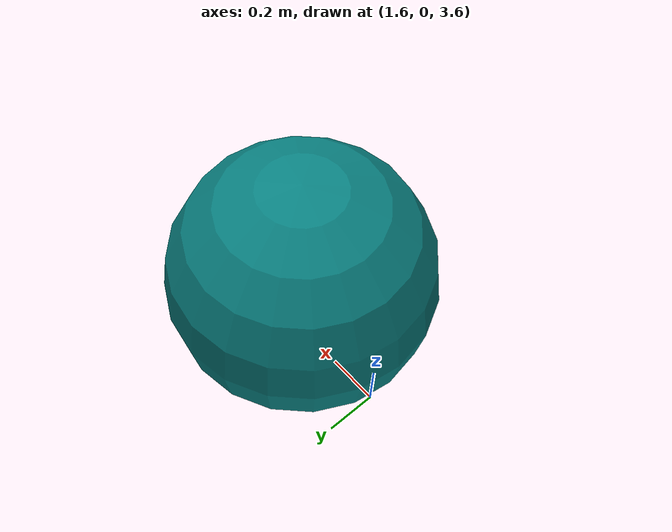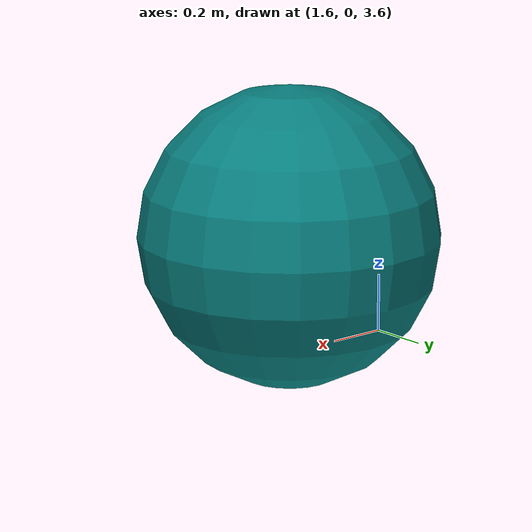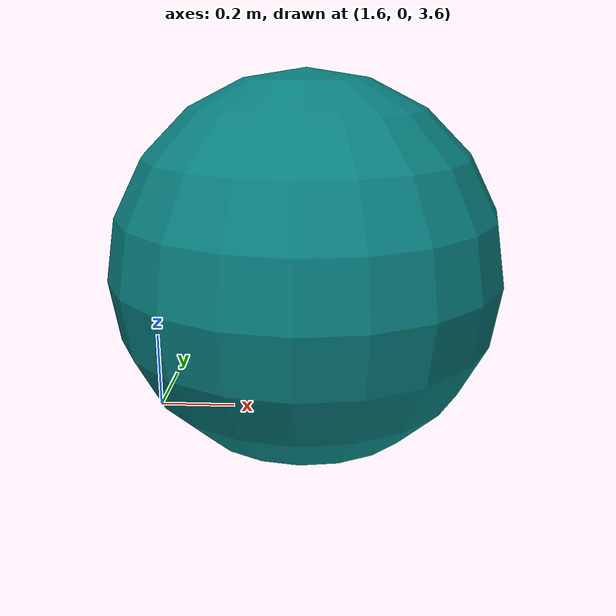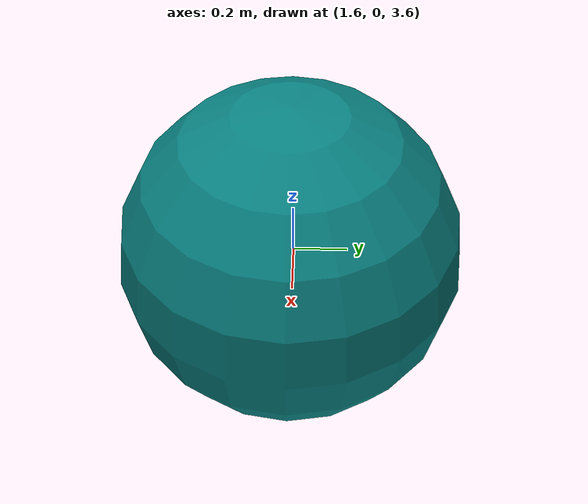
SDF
<?xml version="1.0" ?>
<sdf version="1.4">

  <world name="default">
    <include>
      <uri>model://ground_plane</uri>
    </include>

    <!-- Global light source -->
    <include>
      <uri>model://sun</uri>
    </include>

    <!-- Focus camera on tall pendulum -->
    <gui fullscreen='0'>
      <camera name='user_camera'>
        <pose>4.927360 -4.376610 3.740080 0.000000 0.275643 2.356190</pose>
        <view_controller>orbit</view_controller>
      </camera>
    </gui>

  <model name="model_1">
    <static>false</static>
    <pose>2.0 0.0 4.0 0.0 0.0 0.0</pose>
    <link name="link_1">
      <pose>0.0 0.0 0.0 0.0 0.0 0.0</pose>
      <inertial>
        <pose>0.0 0.0 0.0 0.0 0.0 0.0</pose>
        <inertia>
          <ixx>1.0</ixx>
          <ixy>0.0</ixy>
          <ixz>0.0</ixz>
          <iyy>1.0</iyy>
          <iyz>0.0</iyz>
          <izz>1.0</izz>
        </inertia>
        <mass>10.0</mass>
      </inertial>
      <visual name="visual_sphere">
        <pose>0.0 0.0 0.0 0.0 0.0 0.0</pose>
        <geometry>
          <sphere>
            <radius>0.5</radius>
          </sphere>
        </geometry>
        <material>
          <ambient>0.03 0.5 0.5 1.0</ambient>
          <script>Gazebo/Green</script>
        </material>
        <cast_shadows>true</cast_shadows>
        <laser_retro>100.0</laser_retro>
      </visual>
      <collision name="collision_sphere">
        <pose>0.0 0.0 0.0 0.0 0.0 0.0</pose>
        <max_contacts>250</max_contacts>
        <geometry>
          <sphere>
            <radius>0.5</radius>
          </sphere>
        </geometry>
        <surface>
          <friction>
            <ode>
              <mu>0.5</mu>
              <mu2>0.2</mu2>
              <fdir1>1.0 0 0</fdir1>
              <slip1>0</slip1>
              <slip2>0</slip2>
            </ode>
          </friction>
          <bounce>
            <restitution_coefficient>0</restitution_coefficient>
            <threshold>1000000.0</threshold>
          </bounce>
          <contact>
            <ode>
              <soft_cfm>0</soft_cfm>
              <soft_erp>0.2</soft_erp>
              <kp>1e15</kp>
              <kd>1e13</kd>
              <max_vel>100.0</max_vel>
              <min_depth>0.0001</min_depth>
            </ode>
          </contact>
        </surface>
        <laser_retro>100.0</laser_retro>
      </collision>
    </link>
  </model>

  <model name="camera_model">
    <static>true</static>
    <pose>0.0 0.0 0.5 0.0 0.0 0.0</pose>
    <link name="camera_link">
      <pose>0.0 0.0 0.0 0.0 0.0 0.0</pose>
      <sensor type="depth" name="camera1">
        <update_rate>0.5</update_rate>
        <camera name="head">
          <horizontal_fov>1.3962634</horizontal_fov>
          <image>
            <width>640</width>
            <height>480</height>
            <format>R8G8B8</format>
          </image>
          <clip>
            <near>0.02</near>
            <far>300</far>
          </clip>
        </camera>
        <plugin name="camera_controller" filename="libgazebo_ros_new_depth_camera.so">
          <alwaysOn>true</alwaysOn>
          <!-- Keep this zero, update_rate will control the frame rate -->
          <updateRate>0.0</updateRate>
          <cameraName>camera1</cameraName>
          <imageTopicName>image_raw</imageTopicName>
          <cameraInfoTopicName>camera_info</cameraInfoTopicName>
          <depthImageTopicName>depth/image_raw</depthImageTopicName>
          <!-- neither camera info is getting published, frame_id is empty
            in points and both image headers -->
          <depthImageCameraInfoTopicName>depth/camera_info</depthImageCameraInfoTopicName>
          <pointCloudTopicName>points</pointCloudTopicName>
          <frameName>camera_link</frameName>
          <!-- TODO(lucasw) is this used by depth camera at all? -->
          <hackBaseline>0.07</hackBaseline>
          <pointCloudCutoff>0.001</pointCloudCutoff>
          <distortionK1>0.0</distortionK1>
          <distortionK2>0.0</distortionK2>
          <distortionK3>0.0</distortionK3>
          <distortionT1>0.0</distortionT1>
          <distortionT2>0.0</distortionT2>
        </plugin>
      </sensor>
    </link>
  </model>

  </world>
</sdf>
